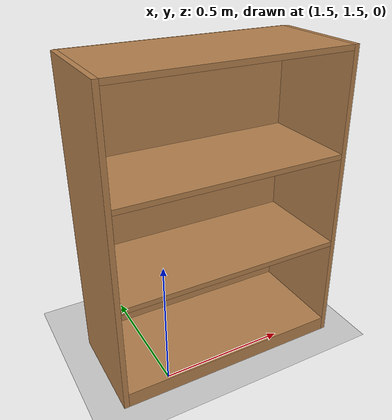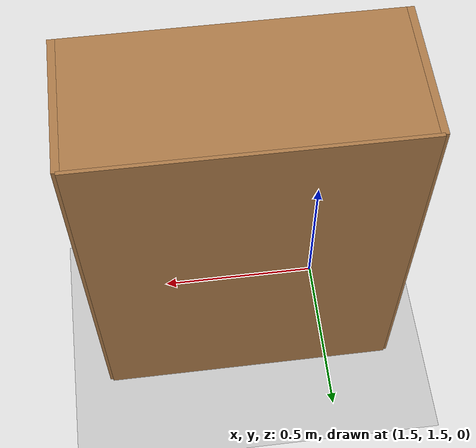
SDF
<sdf version="1.10">
 <world name="empty">
  <model name="ground_plane">
   <static>true</static>
   <link name="link">
    <collision name="collision">
     <geometry><plane><normal>0 0 1</normal><size>100 100</size></plane></geometry>
    </collision>
    <visual name="visual">
     <geometry><plane><normal>0 0 1</normal><size>100 100</size></plane></geometry>
     <material>
      <ambient>0.800000012 0.800000012 0.800000012 1</ambient>
      <diffuse>0.800000012 0.800000012 0.800000012 1</diffuse>
      <specular>0.800000012 0.800000012 0.800000012 1</specular>
     </material>
    </visual>
    <inertial>
     <mass>1</mass>
     <inertia><ixx>1</ixx><ixy>0</ixy><ixz>0</ixz><iyy>1</iyy><iyz>0</iyz><izz>1</izz></inertia>
    </inertial>
   </link>
  </model>
  <model name="Bookshelf_1">
   <static>true</static>
   <link name="link">
    <inertial>
     <mass>1</mass>
     <inertia><ixx>1</ixx><ixy>0</ixy><ixz>0</ixz><iyy>1</iyy><iyz>0</iyz><izz>1</izz></inertia>
    </inertial>
    <collision name="back">
     <pose>0 0.0050000000000000001 0.59999999999999998 0 0 0</pose>
     <geometry><box><size>0.90000000000000002 0.01 1.2</size></box></geometry>
    </collision>
    <visual name="visual1">
     <pose>0 0.0050000000000000001 0.59999999999999998 0 0 0</pose>
     <geometry><box><size>0.90000000000000002 0.01 1.2</size></box></geometry>
     <material>
      <diffuse>1 1 1 1</diffuse>
      <script><uri>file://media/materials/scripts/gazebo.material</uri><name>Gazebo/Wood</name></script>
      <pbr>
       <metal>
        <albedo_map>https://fuel.gazebosim.org/1.0/openrobotics/models/bookshelf/4/files/bookshelf_diffuse.jpg</albedo_map>
       </metal>
      </pbr>
     </material>
    </visual>
    <collision name="left_side">
     <pose>0.45000000000000001 -0.19500000000000001 0.59999999999999998 0 0 0</pose>
     <geometry><box><size>0.02 0.40000000000000002 1.2</size></box></geometry>
    </collision>
    <visual name="visual2">
     <pose>0.45000000000000001 -0.19500000000000001 0.59999999999999998 0 0 0</pose>
     <geometry><box><size>0.02 0.40000000000000002 1.2</size></box></geometry>
     <material>
      <diffuse>1 1 1 1</diffuse>
      <script><uri>file://media/materials/scripts/gazebo.material</uri><name>Gazebo/Wood</name></script>
      <pbr>
       <metal>
        <albedo_map>https://fuel.gazebosim.org/1.0/openrobotics/models/bookshelf/4/files/bookshelf_diffuse.jpg</albedo_map>
       </metal>
      </pbr>
     </material>
    </visual>
    <collision name="right_side">
     <pose>-0.45000000000000001 -0.19500000000000001 0.59999999999999998 0 0 0</pose>
     <geometry><box><size>0.02 0.40000000000000002 1.2</size></box></geometry>
    </collision>
    <visual name="visual3">
     <pose>-0.45000000000000001 -0.19500000000000001 0.59999999999999998 0 0 0</pose>
     <geometry><box><size>0.02 0.40000000000000002 1.2</size></box></geometry>
     <material>
      <diffuse>1 1 1 1</diffuse>
      <script><uri>file://media/materials/scripts/gazebo.material</uri><name>Gazebo/Wood</name></script>
      <pbr>
       <metal>
        <albedo_map>https://fuel.gazebosim.org/1.0/openrobotics/models/bookshelf/4/files/bookshelf_diffuse.jpg</albedo_map>
       </metal>
      </pbr>
     </material>
    </visual>
    <collision name="bottom">
     <pose>0 -0.19500000000000001 0.029999999999999999 0 0 0</pose>
     <geometry><box><size>0.88 0.40000000000000002 0.059999999999999998</size></box></geometry>
    </collision>
    <visual name="visual4">
     <pose>0 -0.19500000000000001 0.029999999999999999 0 0 0</pose>
     <geometry><box><size>0.88 0.40000000000000002 0.059999999999999998</size></box></geometry>
     <material>
      <diffuse>1 1 1 1</diffuse>
      <script><uri>file://media/materials/scripts/gazebo.material</uri><name>Gazebo/Wood</name></script>
      <pbr>
       <metal>
        <albedo_map>https://fuel.gazebosim.org/1.0/openrobotics/models/bookshelf/4/files/bookshelf_diffuse.jpg</albedo_map>
       </metal>
      </pbr>
     </material>
    </visual>
    <collision name="top">
     <pose>0 -0.19500000000000001 1.1899999999999999 0 0 0</pose>
     <geometry><box><size>0.88 0.40000000000000002 0.02</size></box></geometry>
    </collision>
    <visual name="visual5">
     <pose>0 -0.19500000000000001 1.1899999999999999 0 0 0</pose>
     <geometry><box><size>0.88 0.40000000000000002 0.02</size></box></geometry>
     <material>
      <diffuse>1 1 1 1</diffuse>
      <script><uri>file://media/materials/scripts/gazebo.material</uri><name>Gazebo/Wood</name></script>
      <pbr>
       <metal>
        <albedo_map>https://fuel.gazebosim.org/1.0/openrobotics/models/bookshelf/4/files/bookshelf_diffuse.jpg</albedo_map>
       </metal>
      </pbr>
     </material>
    </visual>
    <collision name="low_shelf">
     <pose>0 -0.19500000000000001 0.42999999999999999 0 0 0</pose>
     <geometry><box><size>0.88 0.40000000000000002 0.02</size></box></geometry>
    </collision>
    <visual name="visual6">
     <pose>0 -0.19500000000000001 0.42999999999999999 0 0 0</pose>
     <geometry><box><size>0.88 0.40000000000000002 0.02</size></box></geometry>
     <material>
      <diffuse>1 1 1 1</diffuse>
      <script><uri>file://media/materials/scripts/gazebo.material</uri><name>Gazebo/Wood</name></script>
      <pbr>
       <metal>
        <albedo_map>https://fuel.gazebosim.org/1.0/openrobotics/models/bookshelf/4/files/bookshelf_diffuse.jpg</albedo_map>
       </metal>
      </pbr>
     </material>
    </visual>
    <collision name="high_shelf">
     <pose>0 -0.19500000000000001 0.80000000000000004 0 0 0</pose>
     <geometry><box><size>0.88 0.40000000000000002 0.02</size></box></geometry>
    </collision>
    <visual name="visual7">
     <pose>0 -0.19500000000000001 0.80000000000000004 0 0 0</pose>
     <geometry><box><size>0.88 0.40000000000000002 0.02</size></box></geometry>
     <material>
      <diffuse>1 1 1 1</diffuse>
      <script><uri>file://media/materials/scripts/gazebo.material</uri><name>Gazebo/Wood</name></script>
      <pbr>
       <metal>
        <albedo_map>https://fuel.gazebosim.org/1.0/openrobotics/models/bookshelf/4/files/bookshelf_diffuse.jpg</albedo_map>
       </metal>
      </pbr>
     </material>
    </visual>
   </link>
   <pose>1.75305 1.8265800000000001 0 0 0 0</pose>
  </model>
  <model name="box">
   <pose>0 0 2.7300000000000002 0 0 0</pose>
   <link name="box_link">
    <inertial>
     <inertia><ixx>0.16666</ixx><ixy>0</ixy><ixz>0</ixz><iyy>0.16666</iyy><iyz>0</iyz><izz>0.16666</izz></inertia>
     <mass>100</mass>
    </inertial>
    <collision name="box_collision">
     <geometry><box><size>0.1 0.1 0.10000000000000001</size></box></geometry>
    </collision>
    <visual name="box_visual">
     <geometry><box><size>10 25 0.10000000000000001</size></box></geometry>
     <material>
      <ambient>0.300000012 0.300000012 0.300000012 1</ambient>
      <diffuse>0.699999988 0.699999988 0.699999988 1</diffuse>
      <specular>1 1 1 1</specular>
     </material>
    </visual>
   </link>
   <static>true</static>
  </model>
 </world>
</sdf>
